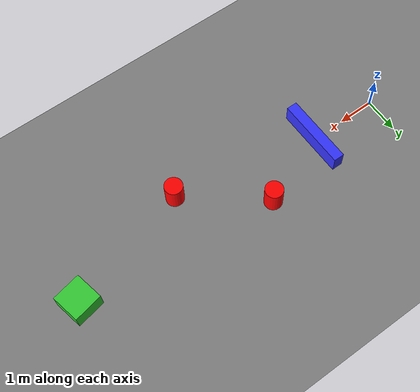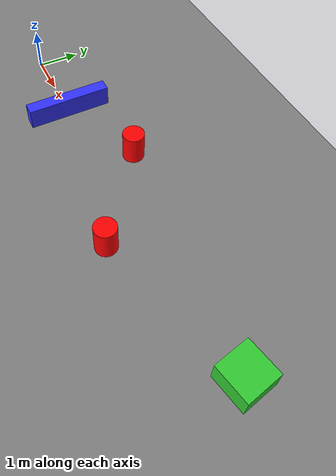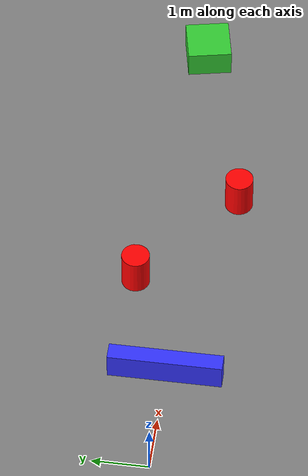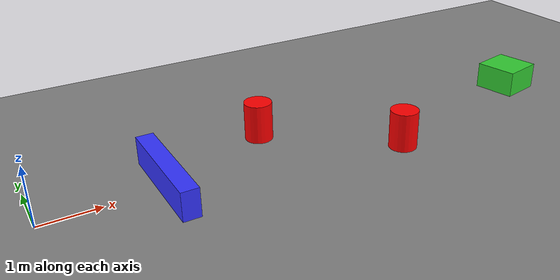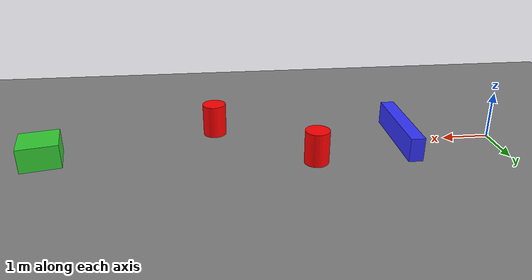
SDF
<?xml version="1.0"?>
<sdf version="1.9">
  <world name="obstacle_world">

    <!-- Systems -->
    <plugin filename="gz-sim-physics-system"
            name="gz::sim::systems::Physics"/>
    <plugin filename="gz-sim-user-commands-system"
            name="gz::sim::systems::UserCommands"/>
    <plugin filename="gz-sim-scene-broadcaster-system"
            name="gz::sim::systems::SceneBroadcaster"/>

    <!-- Scene -->
    <scene>
      <ambient>0.6 0.6 0.6 1</ambient>
      <background>0.85 0.90 1 1</background>
    </scene>

    <!-- Light -->
    <light name="sun" type="directional">
      <pose>0 0 10 0 0 0</pose>
      <diffuse>1 1 1 1</diffuse>
      <specular>0.2 0.2 0.2 1</specular>
      <direction>-0.3 0.1 -1</direction>
    </light>

    <!-- Ground -->
    <model name="ground_plane">
      <static>true</static>
      <link name="link">
        <collision name="collision">
          <geometry>
            <plane>
              <normal>0 0 1</normal>
              <size>50 50</size>
            </plane>
          </geometry>
        </collision>
        <visual name="visual">
          <geometry>
            <plane>
              <normal>0 0 1</normal>
              <size>50 50</size>
            </plane>
          </geometry>
          <material>
            <ambient>0.5 0.5 0.5 1</ambient>
            <diffuse>0.5 0.5 0.5 1</diffuse>
          </material>
        </visual>
      </link>
    </model>

    <!-- MAIN BLOCKER (menghalangi jalur lurus) -->
    <model name="front_wall">
      <static>true</static>
      <pose>2.0 0.0 0.25 0 0 0</pose>
      <link name="link">
        <collision name="collision">
          <geometry>
            <box>
              <size>0.3 2.0 0.5</size>
            </box>
          </geometry>
        </collision>
        <visual name="visual">
          <geometry>
            <box>
              <size>0.3 2.0 0.5</size>
            </box>
          </geometry>
          <material>
            <diffuse>0.2 0.2 1 1</diffuse>
          </material>
        </visual>
      </link>
    </model>

    <!-- Pillar kiri -->
    <model name="pillar_left">
      <static>true</static>
      <pose>4.0 0.8 0.35 0 0 0</pose>
      <link name="link">
        <collision name="collision">
          <geometry>
            <cylinder>
              <radius>0.25</radius>
              <length>0.7</length>
            </cylinder>
          </geometry>
        </collision>
        <visual name="visual">
          <geometry>
            <cylinder>
              <radius>0.25</radius>
              <length>0.7</length>
            </cylinder>
          </geometry>
          <material>
            <diffuse>1 0 0 1</diffuse>
          </material>
        </visual>
      </link>
    </model>

    <!-- Pillar kanan -->
    <model name="pillar_right">
      <static>true</static>
      <pose>6.0 -0.8 0.35 0 0 0</pose>
      <link name="link">
        <collision name="collision">
          <geometry>
            <cylinder>
              <radius>0.25</radius>
              <length>0.7</length>
            </cylinder>
          </geometry>
        </collision>
        <visual name="visual">
          <geometry>
            <cylinder>
              <radius>0.25</radius>
              <length>0.7</length>
            </cylinder>
          </geometry>
          <material>
            <diffuse>1 0 0 1</diffuse>
          </material>
        </visual>
      </link>
    </model>

    <!-- Box dekat goal -->
    <model name="goal_box">
      <static>true</static>
      <pose>9.5 0.2 0.25 0 0 0.2</pose>
      <link name="link">
        <collision name="collision">
          <geometry>
            <box>
              <size>0.8 0.8 0.5</size>
            </box>
          </geometry>
        </collision>
        <visual name="visual">
          <geometry>
            <box>
              <size>0.8 0.8 0.5</size>
            </box>
          </geometry>
          <material>
            <diffuse>0.2 0.8 0.2 1</diffuse>
          </material>
        </visual>
      </link>
    </model>

  </world>
</sdf>
